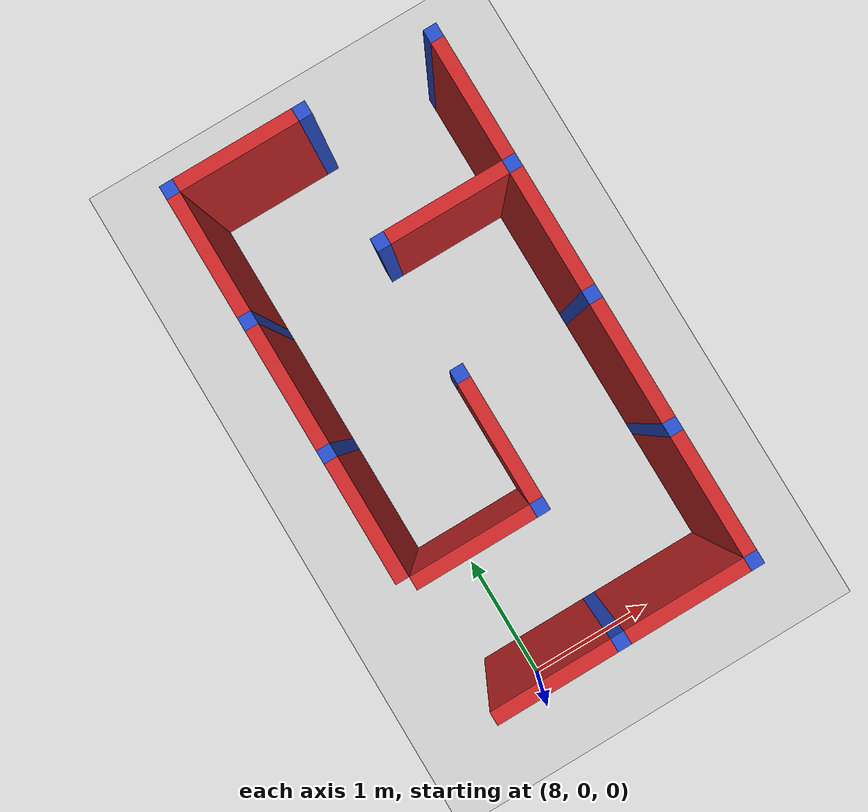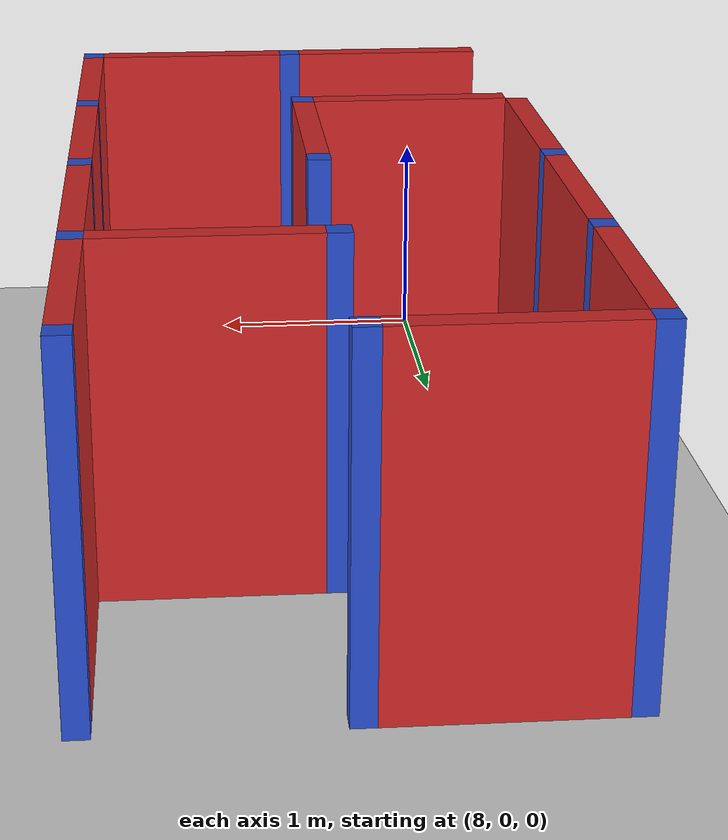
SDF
<sdf version="1.7">
 <world name="default">
  <model name="ground_plane">
   <static>1</static>
   <link name="link">
    <collision name="collision">
     <geometry><plane><normal>0 0 1</normal><size>100 100</size></plane></geometry>
     <surface><friction><ode><mu>100</mu><mu2>50</mu2></ode></friction></surface>
    </collision>
    <visual name="visual">
     <cast_shadows>0</cast_shadows>
     <geometry><plane><normal>0 0 1</normal><size>100 100</size></plane></geometry>
     <material>
      <script><uri>file://media/materials/scripts/gazebo.material</uri><name>Gazebo/Grey</name></script>
     </material>
    </visual>
   </link>
  </model>
  <model name="maze_demo">
   <link name="Joint_13_-11">
    <pose>13 -11 0 0 -0 0</pose>
    <visual name="Wall_2_Visual">
     <pose>0 0 0.75 0 -0 0</pose>
     <geometry><box><size>0.1 0.1 1.5</size></box></geometry>
     <material>
      <script><uri>file://media/materials/scripts/gazebo.material</uri><name>Gazebo/Blue</name></script>
      <ambient>0.996078 0.47451 0.0196078 1</ambient>
      <shader type="pixel"/>
     </material>
     <meta><layer>0</layer></meta>
    </visual>
    <collision name="Wall_2_Collision">
     <pose>0 0 0.75 0 -0 0</pose>
     <geometry><box><size>0.1 0.1 1.5</size></box></geometry>
     <surface>
      <friction>
       <ode><mu>1</mu><mu2>1</mu2><fdir1>0 0 0</fdir1><slip1>0</slip1><slip2>0</slip2></ode>
       <torsional>
        <coefficient>1</coefficient>
        <patch_radius>0</patch_radius>
        <surface_radius>0</surface_radius>
        <use_patch_radius>1</use_patch_radius>
        <ode><slip>0</slip></ode>
       </torsional>
      </friction>
      <bounce><restitution_coefficient>0</restitution_coefficient><threshold>1e+06</threshold></bounce>
      <contact>
       <collide_without_contact>0</collide_without_contact>
       <collide_without_contact_bitmask>1</collide_without_contact_bitmask>
       <collide_bitmask>1</collide_bitmask>
       <ode>
        <soft_cfm>0</soft_cfm>
        <soft_erp>0.2</soft_erp>
        <kp>1e+13</kp>
        <kd>1</kd>
        <max_vel>0.01</max_vel>
        <min_depth>0</min_depth>
       </ode>
       <bullet>
        <split_impulse>1</split_impulse>
        <split_impulse_penetration_threshold>-0.01</split_impulse_penetration_threshold>
        <soft_cfm>0</soft_cfm>
        <soft_erp>0.2</soft_erp>
        <kp>1e+13</kp>
        <kd>1</kd>
       </bullet>
      </contact>
     </surface>
    </collision>
   </link>
   <link name="Joint_13_-12">
    <pose>13 -12 0 0 -0 0</pose>
    <visual name="Wall_2_Visual">
     <pose>0 0 0.75 0 -0 0</pose>
     <geometry><box><size>0.1 0.1 1.5</size></box></geometry>
     <material>
      <script><uri>file://media/materials/scripts/gazebo.material</uri><name>Gazebo/Blue</name></script>
      <ambient>0.996078 0.47451 0.0196078 1</ambient>
      <shader type="pixel"/>
     </material>
     <meta><layer>0</layer></meta>
    </visual>
    <collision name="Wall_2_Collision">
     <pose>0 0 0.75 0 -0 0</pose>
     <geometry><box><size>0.1 0.1 1.5</size></box></geometry>
     <surface>
      <friction>
       <ode><mu>1</mu><mu2>1</mu2><fdir1>0 0 0</fdir1><slip1>0</slip1><slip2>0</slip2></ode>
       <torsional>
        <coefficient>1</coefficient>
        <patch_radius>0</patch_radius>
        <surface_radius>0</surface_radius>
        <use_patch_radius>1</use_patch_radius>
        <ode><slip>0</slip></ode>
       </torsional>
      </friction>
      <bounce><restitution_coefficient>0</restitution_coefficient><threshold>1e+06</threshold></bounce>
      <contact>
       <collide_without_contact>0</collide_without_contact>
       <collide_without_contact_bitmask>1</collide_without_contact_bitmask>
       <collide_bitmask>1</collide_bitmask>
       <ode>
        <soft_cfm>0</soft_cfm>
        <soft_erp>0.2</soft_erp>
        <kp>1e+13</kp>
        <kd>1</kd>
        <max_vel>0.01</max_vel>
        <min_depth>0</min_depth>
       </ode>
       <bullet>
        <split_impulse>1</split_impulse>
        <split_impulse_penetration_threshold>-0.01</split_impulse_penetration_threshold>
        <soft_cfm>0</soft_cfm>
        <soft_erp>0.2</soft_erp>
        <kp>1e+13</kp>
        <kd>1</kd>
       </bullet>
      </contact>
     </surface>
    </collision>
   </link>
   <link name="Joint_13_-13">
    <pose>13 -13 0 0 -0 0</pose>
    <visual name="Wall_2_Visual">
     <pose>0 0 0.75 0 -0 0</pose>
     <geometry><box><size>0.1 0.1 1.5</size></box></geometry>
     <material>
      <script><uri>file://media/materials/scripts/gazebo.material</uri><name>Gazebo/Blue</name></script>
      <ambient>0.996078 0.47451 0.0196078 1</ambient>
      <shader type="pixel"/>
     </material>
     <meta><layer>0</layer></meta>
    </visual>
    <collision name="Wall_2_Collision">
     <pose>0 0 0.75 0 -0 0</pose>
     <geometry><box><size>0.1 0.1 1.5</size></box></geometry>
     <surface>
      <friction>
       <ode><mu>1</mu><mu2>1</mu2><fdir1>0 0 0</fdir1><slip1>0</slip1><slip2>0</slip2></ode>
       <torsional>
        <coefficient>1</coefficient>
        <patch_radius>0</patch_radius>
        <surface_radius>0</surface_radius>
        <use_patch_radius>1</use_patch_radius>
        <ode><slip>0</slip></ode>
       </torsional>
      </friction>
      <bounce><restitution_coefficient>0</restitution_coefficient><threshold>1e+06</threshold></bounce>
      <contact>
       <collide_without_contact>0</collide_without_contact>
       <collide_without_contact_bitmask>1</collide_without_contact_bitmask>
       <collide_bitmask>1</collide_bitmask>
       <ode>
        <soft_cfm>0</soft_cfm>
        <soft_erp>0.2</soft_erp>
        <kp>1e+13</kp>
        <kd>1</kd>
        <max_vel>0.01</max_vel>
        <min_depth>0</min_depth>
       </ode>
       <bullet>
        <split_impulse>1</split_impulse>
        <split_impulse_penetration_threshold>-0.01</split_impulse_penetration_threshold>
        <soft_cfm>0</soft_cfm>
        <soft_erp>0.2</soft_erp>
        <kp>1e+13</kp>
        <kd>1</kd>
       </bullet>
      </contact>
     </surface>
    </collision>
   </link>
   <link name="Joint_14_-11">
    <pose>14 -11 0 0 -0 0</pose>
    <visual name="Wall_2_Visual">
     <pose>0 0 0.75 0 -0 0</pose>
     <geometry><box><size>0.1 0.1 1.5</size></box></geometry>
     <material>
      <script><uri>file://media/materials/scripts/gazebo.material</uri><name>Gazebo/Blue</name></script>
      <ambient>0.996078 0.47451 0.0196078 1</ambient>
      <shader type="pixel"/>
     </material>
     <meta><layer>0</layer></meta>
    </visual>
    <collision name="Wall_2_Collision">
     <pose>0 0 0.75 0 -0 0</pose>
     <geometry><box><size>0.1 0.1 1.5</size></box></geometry>
     <surface>
      <friction>
       <ode><mu>1</mu><mu2>1</mu2><fdir1>0 0 0</fdir1><slip1>0</slip1><slip2>0</slip2></ode>
       <torsional>
        <coefficient>1</coefficient>
        <patch_radius>0</patch_radius>
        <surface_radius>0</surface_radius>
        <use_patch_radius>1</use_patch_radius>
        <ode><slip>0</slip></ode>
       </torsional>
      </friction>
      <bounce><restitution_coefficient>0</restitution_coefficient><threshold>1e+06</threshold></bounce>
      <contact>
       <collide_without_contact>0</collide_without_contact>
       <collide_without_contact_bitmask>1</collide_without_contact_bitmask>
       <collide_bitmask>1</collide_bitmask>
       <ode>
        <soft_cfm>0</soft_cfm>
        <soft_erp>0.2</soft_erp>
        <kp>1e+13</kp>
        <kd>1</kd>
        <max_vel>0.01</max_vel>
        <min_depth>0</min_depth>
       </ode>
       <bullet>
        <split_impulse>1</split_impulse>
        <split_impulse_penetration_threshold>-0.01</split_impulse_penetration_threshold>
        <soft_cfm>0</soft_cfm>
        <soft_erp>0.2</soft_erp>
        <kp>1e+13</kp>
        <kd>1</kd>
       </bullet>
      </contact>
     </surface>
    </collision>
   </link>
   <link name="Joint_14_-12">
    <pose>14 -12 0 0 -0 0</pose>
    <visual name="Wall_2_Visual">
     <pose>0 0 0.75 0 -0 0</pose>
     <geometry><box><size>0.1 0.1 1.5</size></box></geometry>
     <material>
      <script><uri>file://media/materials/scripts/gazebo.material</uri><name>Gazebo/Blue</name></script>
      <ambient>0.996078 0.47451 0.0196078 1</ambient>
      <shader type="pixel"/>
     </material>
     <meta><layer>0</layer></meta>
    </visual>
    <collision name="Wall_2_Collision">
     <pose>0 0 0.75 0 -0 0</pose>
     <geometry><box><size>0.1 0.1 1.5</size></box></geometry>
     <surface>
      <friction>
       <ode><mu>1</mu><mu2>1</mu2><fdir1>0 0 0</fdir1><slip1>0</slip1><slip2>0</slip2></ode>
       <torsional>
        <coefficient>1</coefficient>
        <patch_radius>0</patch_radius>
        <surface_radius>0</surface_radius>
        <use_patch_radius>1</use_patch_radius>
        <ode><slip>0</slip></ode>
       </torsional>
      </friction>
      <bounce><restitution_coefficient>0</restitution_coefficient><threshold>1e+06</threshold></bounce>
      <contact>
       <collide_without_contact>0</collide_without_contact>
       <collide_without_contact_bitmask>1</collide_without_contact_bitmask>
       <collide_bitmask>1</collide_bitmask>
       <ode>
        <soft_cfm>0</soft_cfm>
        <soft_erp>0.2</soft_erp>
        <kp>1e+13</kp>
        <kd>1</kd>
        <max_vel>0.01</max_vel>
        <min_depth>0</min_depth>
       </ode>
       <bullet>
        <split_impulse>1</split_impulse>
        <split_impulse_penetration_threshold>-0.01</split_impulse_penetration_threshold>
        <soft_cfm>0</soft_cfm>
        <soft_erp>0.2</soft_erp>
        <kp>1e+13</kp>
        <kd>1</kd>
       </bullet>
      </contact>
     </surface>
    </collision>
   </link>
   <link name="Joint_14_-13">
    <pose>14 -13 0 0 -0 0</pose>
    <visual name="Wall_2_Visual">
     <pose>0 0 0.75 0 -0 0</pose>
     <geometry><box><size>0.1 0.1 1.5</size></box></geometry>
     <material>
      <script><uri>file://media/materials/scripts/gazebo.material</uri><name>Gazebo/Blue</name></script>
      <ambient>0.996078 0.47451 0.0196078 1</ambient>
      <shader type="pixel"/>
     </material>
     <meta><layer>0</layer></meta>
    </visual>
    <collision name="Wall_2_Collision">
     <pose>0 0 0.75 0 -0 0</pose>
     <geometry><box><size>0.1 0.1 1.5</size></box></geometry>
     <surface>
      <friction>
       <ode><mu>1</mu><mu2>1</mu2><fdir1>0 0 0</fdir1><slip1>0</slip1><slip2>0</slip2></ode>
       <torsional>
        <coefficient>1</coefficient>
        <patch_radius>0</patch_radius>
        <surface_radius>0</surface_radius>
        <use_patch_radius>1</use_patch_radius>
        <ode><slip>0</slip></ode>
       </torsional>
      </friction>
      <bounce><restitution_coefficient>0</restitution_coefficient><threshold>1e+06</threshold></bounce>
      <contact>
       <collide_without_contact>0</collide_without_contact>
       <collide_without_contact_bitmask>1</collide_without_contact_bitmask>
       <collide_bitmask>1</collide_bitmask>
       <ode>
        <soft_cfm>0</soft_cfm>
        <soft_erp>0.2</soft_erp>
        <kp>1e+13</kp>
        <kd>1</kd>
        <max_vel>0.01</max_vel>
        <min_depth>0</min_depth>
       </ode>
       <bullet>
        <split_impulse>1</split_impulse>
        <split_impulse_penetration_threshold>-0.01</split_impulse_penetration_threshold>
        <soft_cfm>0</soft_cfm>
        <soft_erp>0.2</soft_erp>
        <kp>1e+13</kp>
        <kd>1</kd>
       </bullet>
      </contact>
     </surface>
    </collision>
   </link>
   <link name="Joint_14_-14">
    <pose>14 -14 0 0 -0 0</pose>
    <visual name="Wall_2_Visual">
     <pose>0 0 0.75 0 -0 0</pose>
     <geometry><box><size>0.1 0.1 1.5</size></box></geometry>
     <material>
      <script><uri>file://media/materials/scripts/gazebo.material</uri><name>Gazebo/Blue</name></script>
      <ambient>0.996078 0.47451 0.0196078 1</ambient>
      <shader type="pixel"/>
     </material>
     <meta><layer>0</layer></meta>
    </visual>
    <collision name="Wall_2_Collision">
     <pose>0 0 0.75 0 -0 0</pose>
     <geometry><box><size>0.1 0.1 1.5</size></box></geometry>
     <surface>
      <friction>
       <ode><mu>1</mu><mu2>1</mu2><fdir1>0 0 0</fdir1><slip1>0</slip1><slip2>0</slip2></ode>
       <torsional>
        <coefficient>1</coefficient>
        <patch_radius>0</patch_radius>
        <surface_radius>0</surface_radius>
        <use_patch_radius>1</use_patch_radius>
        <ode><slip>0</slip></ode>
       </torsional>
      </friction>
      <bounce><restitution_coefficient>0</restitution_coefficient><threshold>1e+06</threshold></bounce>
      <contact>
       <collide_without_contact>0</collide_without_contact>
       <collide_without_contact_bitmask>1</collide_without_contact_bitmask>
       <collide_bitmask>1</collide_bitmask>
       <ode>
        <soft_cfm>0</soft_cfm>
        <soft_erp>0.2</soft_erp>
        <kp>1e+13</kp>
        <kd>1</kd>
        <max_vel>0.01</max_vel>
        <min_depth>0</min_depth>
       </ode>
       <bullet>
        <split_impulse>1</split_impulse>
        <split_impulse_penetration_threshold>-0.01</split_impulse_penetration_threshold>
        <soft_cfm>0</soft_cfm>
        <soft_erp>0.2</soft_erp>
        <kp>1e+13</kp>
        <kd>1</kd>
       </bullet>
      </contact>
     </surface>
    </collision>
   </link>
   <link name="Joint_14_-15">
    <pose>14 -15 0 0 -0 0</pose>
    <visual name="Wall_2_Visual">
     <pose>0 0 0.75 0 -0 0</pose>
     <geometry><box><size>0.1 0.1 1.5</size></box></geometry>
     <material>
      <script><uri>file://media/materials/scripts/gazebo.material</uri><name>Gazebo/Blue</name></script>
      <ambient>0.996078 0.47451 0.0196078 1</ambient>
      <shader type="pixel"/>
     </material>
     <meta><layer>0</layer></meta>
    </visual>
    <collision name="Wall_2_Collision">
     <pose>0 0 0.75 0 -0 0</pose>
     <geometry><box><size>0.1 0.1 1.5</size></box></geometry>
     <surface>
      <friction>
       <ode><mu>1</mu><mu2>1</mu2><fdir1>0 0 0</fdir1><slip1>0</slip1><slip2>0</slip2></ode>
       <torsional>
        <coefficient>1</coefficient>
        <patch_radius>0</patch_radius>
        <surface_radius>0</surface_radius>
        <use_patch_radius>1</use_patch_radius>
        <ode><slip>0</slip></ode>
       </torsional>
      </friction>
      <bounce><restitution_coefficient>0</restitution_coefficient><threshold>1e+06</threshold></bounce>
      <contact>
       <collide_without_contact>0</collide_without_contact>
       <collide_without_contact_bitmask>1</collide_without_contact_bitmask>
       <collide_bitmask>1</collide_bitmask>
       <ode>
        <soft_cfm>0</soft_cfm>
        <soft_erp>0.2</soft_erp>
        <kp>1e+13</kp>
        <kd>1</kd>
        <max_vel>0.01</max_vel>
        <min_depth>0</min_depth>
       </ode>
       <bullet>
        <split_impulse>1</split_impulse>
        <split_impulse_penetration_threshold>-0.01</split_impulse_penetration_threshold>
        <soft_cfm>0</soft_cfm>
        <soft_erp>0.2</soft_erp>
        <kp>1e+13</kp>
        <kd>1</kd>
       </bullet>
      </contact>
     </surface>
    </collision>
   </link>
   <link name="Joint_15_-11">
    <pose>15 -11 0 0 -0 0</pose>
    <visual name="Wall_2_Visual">
     <pose>0 0 0.75 0 -0 0</pose>
     <geometry><box><size>0.1 0.1 1.5</size></box></geometry>
     <material>
      <script><uri>file://media/materials/scripts/gazebo.material</uri><name>Gazebo/Blue</name></script>
      <ambient>0.996078 0.47451 0.0196078 1</ambient>
      <shader type="pixel"/>
     </material>
     <meta><layer>0</layer></meta>
    </visual>
    <collision name="Wall_2_Collision">
     <pose>0 0 0.75 0 -0 0</pose>
     <geometry><box><size>0.1 0.1 1.5</size></box></geometry>
     <surface>
      <friction>
       <ode><mu>1</mu><mu2>1</mu2><fdir1>0 0 0</fdir1><slip1>0</slip1><slip2>0</slip2></ode>
       <torsional>
        <coefficient>1</coefficient>
        <patch_radius>0</patch_radius>
        <surface_radius>0</surface_radius>
        <use_patch_radius>1</use_patch_radius>
        <ode><slip>0</slip></ode>
       </torsional>
      </friction>
      <bounce><restitution_coefficient>0</restitution_coefficient><threshold>1e+06</threshold></bounce>
      <contact>
       <collide_without_contact>0</collide_without_contact>
       <collide_without_contact_bitmask>1</collide_without_contact_bitmask>
       <collide_bitmask>1</collide_bitmask>
       <ode>
        <soft_cfm>0</soft_cfm>
        <soft_erp>0.2</soft_erp>
        <kp>1e+13</kp>
        <kd>1</kd>
        <max_vel>0.01</max_vel>
        <min_depth>0</min_depth>
       </ode>
       <bullet>
        <split_impulse>1</split_impulse>
        <split_impulse_penetration_threshold>-0.01</split_impulse_penetration_threshold>
        <soft_cfm>0</soft_cfm>
        <soft_erp>0.2</soft_erp>
        <kp>1e+13</kp>
        <kd>1</kd>
       </bullet>
      </contact>
     </surface>
    </collision>
   </link>
   <link name="Joint_15_-12">
    <pose>15 -12 0 0 -0 0</pose>
    <visual name="Wall_2_Visual">
     <pose>0 0 0.75 0 -0 0</pose>
     <geometry><box><size>0.1 0.1 1.5</size></box></geometry>
     <material>
      <script><uri>file://media/materials/scripts/gazebo.material</uri><name>Gazebo/Blue</name></script>
      <ambient>0.996078 0.47451 0.0196078 1</ambient>
      <shader type="pixel"/>
     </material>
     <meta><layer>0</layer></meta>
    </visual>
    <collision name="Wall_2_Collision">
     <pose>0 0 0.75 0 -0 0</pose>
     <geometry><box><size>0.1 0.1 1.5</size></box></geometry>
     <surface>
      <friction>
       <ode><mu>1</mu><mu2>1</mu2><fdir1>0 0 0</fdir1><slip1>0</slip1><slip2>0</slip2></ode>
       <torsional>
        <coefficient>1</coefficient>
        <patch_radius>0</patch_radius>
        <surface_radius>0</surface_radius>
        <use_patch_radius>1</use_patch_radius>
        <ode><slip>0</slip></ode>
       </torsional>
      </friction>
      <bounce><restitution_coefficient>0</restitution_coefficient><threshold>1e+06</threshold></bounce>
      <contact>
       <collide_without_contact>0</collide_without_contact>
       <collide_without_contact_bitmask>1</collide_without_contact_bitmask>
       <collide_bitmask>1</collide_bitmask>
       <ode>
        <soft_cfm>0</soft_cfm>
        <soft_erp>0.2</soft_erp>
        <kp>1e+13</kp>
        <kd>1</kd>
        <max_vel>0.01</max_vel>
        <min_depth>0</min_depth>
       </ode>
       <bullet>
        <split_impulse>1</split_impulse>
        <split_impulse_penetration_threshold>-0.01</split_impulse_penetration_threshold>
        <soft_cfm>0</soft_cfm>
        <soft_erp>0.2</soft_erp>
        <kp>1e+13</kp>
        <kd>1</kd>
       </bullet>
      </contact>
     </surface>
    </collision>
   </link>
   <link name="Joint_15_-13">
    <pose>15 -13 0 0 -0 0</pose>
    <visual name="Wall_2_Visual">
     <pose>0 0 0.75 0 -0 0</pose>
     <geometry><box><size>0.1 0.1 1.5</size></box></geometry>
     <material>
      <script><uri>file://media/materials/scripts/gazebo.material</uri><name>Gazebo/Blue</name></script>
      <ambient>0.996078 0.47451 0.0196078 1</ambient>
      <shader type="pixel"/>
     </material>
     <meta><layer>0</layer></meta>
    </visual>
    <collision name="Wall_2_Collision">
     <pose>0 0 0.75 0 -0 0</pose>
     <geometry><box><size>0.1 0.1 1.5</size></box></geometry>
     <surface>
      <friction>
       <ode><mu>1</mu><mu2>1</mu2><fdir1>0 0 0</fdir1><slip1>0</slip1><slip2>0</slip2></ode>
       <torsional>
        <coefficient>1</coefficient>
        <patch_radius>0</patch_radius>
        <surface_radius>0</surface_radius>
        <use_patch_radius>1</use_patch_radius>
        <ode><slip>0</slip></ode>
       </torsional>
      </friction>
      <bounce><restitution_coefficient>0</restitution_coefficient><threshold>1e+06</threshold></bounce>
      <contact>
       <collide_without_contact>0</collide_without_contact>
       <collide_without_contact_bitmask>1</collide_without_contact_bitmask>
       <collide_bitmask>1</collide_bitmask>
       <ode>
        <soft_cfm>0</soft_cfm>
        <soft_erp>0.2</soft_erp>
        <kp>1e+13</kp>
        <kd>1</kd>
        <max_vel>0.01</max_vel>
        <min_depth>0</min_depth>
       </ode>
       <bullet>
        <split_impulse>1</split_impulse>
        <split_impulse_penetration_threshold>-0.01</split_impulse_penetration_threshold>
        <soft_cfm>0</soft_cfm>
        <soft_erp>0.2</soft_erp>
        <kp>1e+13</kp>
        <kd>1</kd>
       </bullet>
      </contact>
     </surface>
    </collision>
   </link>
   <link name="Joint_15_-14">
    <pose>15 -14 0 0 -0 0</pose>
    <visual name="Wall_2_Visual">
     <pose>0 0 0.75 0 -0 0</pose>
     <geometry><box><size>0.1 0.1 1.5</size></box></geometry>
     <material>
      <script><uri>file://media/materials/scripts/gazebo.material</uri><name>Gazebo/Blue</name></script>
      <ambient>0.996078 0.47451 0.0196078 1</ambient>
      <shader type="pixel"/>
     </material>
     <meta><layer>0</layer></meta>
    </visual>
    <collision name="Wall_2_Collision">
     <pose>0 0 0.75 0 -0 0</pose>
     <geometry><box><size>0.1 0.1 1.5</size></box></geometry>
     <surface>
      <friction>
       <ode><mu>1</mu><mu2>1</mu2><fdir1>0 0 0</fdir1><slip1>0</slip1><slip2>0</slip2></ode>
       <torsional>
        <coefficient>1</coefficient>
        <patch_radius>0</patch_radius>
        <surface_radius>0</surface_radius>
        <use_patch_radius>1</use_patch_radius>
        <ode><slip>0</slip></ode>
       </torsional>
      </friction>
      <bounce><restitution_coefficient>0</restitution_coefficient><threshold>1e+06</threshold></bounce>
      <contact>
       <collide_without_contact>0</collide_without_contact>
       <collide_without_contact_bitmask>1</collide_without_contact_bitmask>
       <collide_bitmask>1</collide_bitmask>
       <ode>
        <soft_cfm>0</soft_cfm>
        <soft_erp>0.2</soft_erp>
        <kp>1e+13</kp>
        <kd>1</kd>
        <max_vel>0.01</max_vel>
        <min_depth>0</min_depth>
       </ode>
       <bullet>
        <split_impulse>1</split_impulse>
        <split_impulse_penetration_threshold>-0.01</split_impulse_penetration_threshold>
        <soft_cfm>0</soft_cfm>
        <soft_erp>0.2</soft_erp>
        <kp>1e+13</kp>
        <kd>1</kd>
       </bullet>
      </contact>
     </surface>
    </collision>
   </link>
   <link name="Joint_15_-15">
    <pose>15 -15 0 0 -0 0</pose>
    <visual name="Wall_2_Visual">
     <pose>0 0 0.75 0 -0 0</pose>
     <geometry><box><size>0.1 0.1 1.5</size></box></geometry>
     <material>
      <script><uri>file://media/materials/scripts/gazebo.material</uri><name>Gazebo/Blue</name></script>
      <ambient>0.996078 0.47451 0.0196078 1</ambient>
      <shader type="pixel"/>
     </material>
     <meta><layer>0</layer></meta>
    </visual>
    <collision name="Wall_2_Collision">
     <pose>0 0 0.75 0 -0 0</pose>
     <geometry><box><size>0.1 0.1 1.5</size></box></geometry>
     <surface>
      <friction>
       <ode><mu>1</mu><mu2>1</mu2><fdir1>0 0 0</fdir1><slip1>0</slip1><slip2>0</slip2></ode>
       <torsional>
        <coefficient>1</coefficient>
        <patch_radius>0</patch_radius>
        <surface_radius>0</surface_radius>
        <use_patch_radius>1</use_patch_radius>
        <ode><slip>0</slip></ode>
       </torsional>
      </friction>
      <bounce><restitution_coefficient>0</restitution_coefficient><threshold>1e+06</threshold></bounce>
      <contact>
       <collide_without_contact>0</collide_without_contact>
       <collide_without_contact_bitmask>1</collide_without_contact_bitmask>
       <collide_bitmask>1</collide_bitmask>
       <ode>
        <soft_cfm>0</soft_cfm>
        <soft_erp>0.2</soft_erp>
        <kp>1e+13</kp>
        <kd>1</kd>
        <max_vel>0.01</max_vel>
        <min_depth>0</min_depth>
       </ode>
       <bullet>
        <split_impulse>1</split_impulse>
        <split_impulse_penetration_threshold>-0.01</split_impulse_penetration_threshold>
        <soft_cfm>0</soft_cfm>
        <soft_erp>0.2</soft_erp>
        <kp>1e+13</kp>
        <kd>1</kd>
       </bullet>
      </contact>
     </surface>
    </collision>
   </link>
   <link name="Wall_13_11_h">
    <pose>13.5 -11 0 0 -0 0</pose>
    <visual name="Wall_0_Visual">
     <pose>0 0 0.75 0 -0 0</pose>
     <geometry><box><size>0.9 0.1 1.5</size></box></geometry>
     <material>
      <script><uri>file://media/materials/scripts/gazebo.material</uri><name>Gazebo/Red</name></script>
      <ambient>0.921569 0.807843 0.615686 1</ambient>
      <shader type="pixel"/>
     </material>
     <meta><layer>0</layer></meta>
    </visual>
    <collision name="Wall_0_Collision">
     <pose>0 0 0.75 0 -0 0</pose>
     <geometry><box><size>0.9 0.1 1.5</size></box></geometry>
     <surface>
      <friction>
       <ode><mu>1</mu><mu2>1</mu2><fdir1>0 0 0</fdir1><slip1>0</slip1><slip2>0</slip2></ode>
       <torsional>
        <coefficient>1</coefficient>
        <patch_radius>0</patch_radius>
        <surface_radius>0</surface_radius>
        <use_patch_radius>1</use_patch_radius>
        <ode><slip>0</slip></ode>
       </torsional>
      </friction>
      <bounce><restitution_coefficient>0</restitution_coefficient><threshold>1e+06</threshold></bounce>
      <contact>
       <collide_without_contact>0</collide_without_contact>
       <collide_without_contact_bitmask>1</collide_without_contact_bitmask>
       <collide_bitmask>1</collide_bitmask>
       <ode>
        <soft_cfm>0</soft_cfm>
        <soft_erp>0.2</soft_erp>
        <kp>1e+13</kp>
        <kd>1</kd>
        <max_vel>0.01</max_vel>
        <min_depth>0</min_depth>
       </ode>
       <bullet>
        <split_impulse>1</split_impulse>
        <split_impulse_penetration_threshold>-0.01</split_impulse_penetration_threshold>
        <soft_cfm>0</soft_cfm>
        <soft_erp>0.2</soft_erp>
        <kp>1e+13</kp>
        <kd>1</kd>
       </bullet>
      </contact>
     </surface>
    </collision>
   </link>
   <link name="Wall_13_11_v">
    <pose>13 -11.5 0 0 -0 1.5708</pose>
    <visual name="Wall_0_Visual">
     <pose>0 0 0.75 0 -0 0</pose>
     <geometry><box><size>0.9 0.1 1.5</size></box></geometry>
     <material>
      <script><uri>file://media/materials/scripts/gazebo.material</uri><name>Gazebo/Red</name></script>
      <ambient>0.921569 0.807843 0.615686 1</ambient>
      <shader type="pixel"/>
     </material>
     <meta><layer>0</layer></meta>
    </visual>
    <collision name="Wall_0_Collision">
     <pose>0 0 0.75 0 -0 0</pose>
     <geometry><box><size>0.9 0.1 1.5</size></box></geometry>
     <surface>
      <friction>
       <ode><mu>1</mu><mu2>1</mu2><fdir1>0 0 0</fdir1><slip1>0</slip1><slip2>0</slip2></ode>
       <torsional>
        <coefficient>1</coefficient>
        <patch_radius>0</patch_radius>
        <surface_radius>0</surface_radius>
        <use_patch_radius>1</use_patch_radius>
        <ode><slip>0</slip></ode>
       </torsional>
      </friction>
      <bounce><restitution_coefficient>0</restitution_coefficient><threshold>1e+06</threshold></bounce>
      <contact>
       <collide_without_contact>0</collide_without_contact>
       <collide_without_contact_bitmask>1</collide_without_contact_bitmask>
       <collide_bitmask>1</collide_bitmask>
       <ode>
        <soft_cfm>0</soft_cfm>
        <soft_erp>0.2</soft_erp>
        <kp>1e+13</kp>
        <kd>1</kd>
        <max_vel>0.01</max_vel>
        <min_depth>0</min_depth>
       </ode>
       <bullet>
        <split_impulse>1</split_impulse>
        <split_impulse_penetration_threshold>-0.01</split_impulse_penetration_threshold>
        <soft_cfm>0</soft_cfm>
        <soft_erp>0.2</soft_erp>
        <kp>1e+13</kp>
        <kd>1</kd>
       </bullet>
      </contact>
     </surface>
    </collision>
   </link>
   <link name="Wall_13_12_v">
    <pose>13 -12.5 0 0 -0 1.5708</pose>
    <visual name="Wall_0_Visual">
     <pose>0 0 0.75 0 -0 0</pose>
     <geometry><box><size>0.9 0.1 1.5</size></box></geometry>
     <material>
      <script><uri>file://media/materials/scripts/gazebo.material</uri><name>Gazebo/Red</name></script>
      <ambient>0.921569 0.807843 0.615686 1</ambient>
      <shader type="pixel"/>
     </material>
     <meta><layer>0</layer></meta>
    </visual>
    <collision name="Wall_0_Collision">
     <pose>0 0 0.75 0 -0 0</pose>
     <geometry><box><size>0.9 0.1 1.5</size></box></geometry>
     <surface>
      <friction>
       <ode><mu>1</mu><mu2>1</mu2><fdir1>0 0 0</fdir1><slip1>0</slip1><slip2>0</slip2></ode>
       <torsional>
        <coefficient>1</coefficient>
        <patch_radius>0</patch_radius>
        <surface_radius>0</surface_radius>
        <use_patch_radius>1</use_patch_radius>
        <ode><slip>0</slip></ode>
       </torsional>
      </friction>
      <bounce><restitution_coefficient>0</restitution_coefficient><threshold>1e+06</threshold></bounce>
      <contact>
       <collide_without_contact>0</collide_without_contact>
       <collide_without_contact_bitmask>1</collide_without_contact_bitmask>
       <collide_bitmask>1</collide_bitmask>
       <ode>
        <soft_cfm>0</soft_cfm>
        <soft_erp>0.2</soft_erp>
        <kp>1e+13</kp>
        <kd>1</kd>
        <max_vel>0.01</max_vel>
        <min_depth>0</min_depth>
       </ode>
       <bullet>
        <split_impulse>1</split_impulse>
        <split_impulse_penetration_threshold>-0.01</split_impulse_penetration_threshold>
        <soft_cfm>0</soft_cfm>
        <soft_erp>0.2</soft_erp>
        <kp>1e+13</kp>
        <kd>1</kd>
       </bullet>
      </contact>
     </surface>
    </collision>
   </link>
   <link name="Wall_13_13_v">
    <pose>13 -13.5 0 0 -0 1.5708</pose>
    <visual name="Wall_0_Visual">
     <pose>0 0 0.75 0 -0 0</pose>
     <geometry><box><size>0.9 0.1 1.5</size></box></geometry>
     <material>
      <script><uri>file://media/materials/scripts/gazebo.material</uri><name>Gazebo/Red</name></script>
      <ambient>0.921569 0.807843 0.615686 1</ambient>
      <shader type="pixel"/>
     </material>
     <meta><layer>0</layer></meta>
    </visual>
    <collision name="Wall_0_Collision">
     <pose>0 0 0.75 0 -0 0</pose>
     <geometry><box><size>0.9 0.1 1.5</size></box></geometry>
     <surface>
      <friction>
       <ode><mu>1</mu><mu2>1</mu2><fdir1>0 0 0</fdir1><slip1>0</slip1><slip2>0</slip2></ode>
       <torsional>
        <coefficient>1</coefficient>
        <patch_radius>0</patch_radius>
        <surface_radius>0</surface_radius>
        <use_patch_radius>1</use_patch_radius>
        <ode><slip>0</slip></ode>
       </torsional>
      </friction>
      <bounce><restitution_coefficient>0</restitution_coefficient><threshold>1e+06</threshold></bounce>
      <contact>
       <collide_without_contact>0</collide_without_contact>
       <collide_without_contact_bitmask>1</collide_without_contact_bitmask>
       <collide_bitmask>1</collide_bitmask>
       <ode>
        <soft_cfm>0</soft_cfm>
        <soft_erp>0.2</soft_erp>
        <kp>1e+13</kp>
        <kd>1</kd>
        <max_vel>0.01</max_vel>
        <min_depth>0</min_depth>
       </ode>
       <bullet>
        <split_impulse>1</split_impulse>
        <split_impulse_penetration_threshold>-0.01</split_impulse_penetration_threshold>
        <soft_cfm>0</soft_cfm>
        <soft_erp>0.2</soft_erp>
        <kp>1e+13</kp>
        <kd>1</kd>
       </bullet>
      </contact>
     </surface>
    </collision>
   </link>
   <link name="Wall_13_14_h">
    <pose>13.5 -14 0 0 -0 0</pose>
    <visual name="Wall_0_Visual">
     <pose>0 0 0.75 0 -0 0</pose>
     <geometry><box><size>0.9 0.1 1.5</size></box></geometry>
     <material>
      <script><uri>file://media/materials/scripts/gazebo.material</uri><name>Gazebo/Red</name></script>
      <ambient>0.921569 0.807843 0.615686 1</ambient>
      <shader type="pixel"/>
     </material>
     <meta><layer>0</layer></meta>
    </visual>
    <collision name="Wall_0_Collision">
     <pose>0 0 0.75 0 -0 0</pose>
     <geometry><box><size>0.9 0.1 1.5</size></box></geometry>
     <surface>
      <friction>
       <ode><mu>1</mu><mu2>1</mu2><fdir1>0 0 0</fdir1><slip1>0</slip1><slip2>0</slip2></ode>
       <torsional>
        <coefficient>1</coefficient>
        <patch_radius>0</patch_radius>
        <surface_radius>0</surface_radius>
        <use_patch_radius>1</use_patch_radius>
        <ode><slip>0</slip></ode>
       </torsional>
      </friction>
      <bounce><restitution_coefficient>0</restitution_coefficient><threshold>1e+06</threshold></bounce>
      <contact>
       <collide_without_contact>0</collide_without_contact>
       <collide_without_contact_bitmask>1</collide_without_contact_bitmask>
       <collide_bitmask>1</collide_bitmask>
       <ode>
        <soft_cfm>0</soft_cfm>
        <soft_erp>0.2</soft_erp>
        <kp>1e+13</kp>
        <kd>1</kd>
        <max_vel>0.01</max_vel>
        <min_depth>0</min_depth>
       </ode>
       <bullet>
        <split_impulse>1</split_impulse>
        <split_impulse_penetration_threshold>-0.01</split_impulse_penetration_threshold>
        <soft_cfm>0</soft_cfm>
        <soft_erp>0.2</soft_erp>
        <kp>1e+13</kp>
        <kd>1</kd>
       </bullet>
      </contact>
     </surface>
    </collision>
   </link>
   <link name="Wall_13_15_h">
    <pose>13.5 -15 0 0 -0 0</pose>
    <visual name="Wall_0_Visual">
     <pose>0 0 0.75 0 -0 0</pose>
     <geometry><box><size>0.9 0.1 1.5</size></box></geometry>
     <material>
      <script><uri>file://media/materials/scripts/gazebo.material</uri><name>Gazebo/Red</name></script>
      <ambient>0.921569 0.807843 0.615686 1</ambient>
      <shader type="pixel"/>
     </material>
     <meta><layer>0</layer></meta>
    </visual>
    <collision name="Wall_0_Collision">
     <pose>0 0 0.75 0 -0 0</pose>
     <geometry><box><size>0.9 0.1 1.5</size></box></geometry>
     <surface>
      <friction>
       <ode><mu>1</mu><mu2>1</mu2><fdir1>0 0 0</fdir1><slip1>0</slip1><slip2>0</slip2></ode>
       <torsional>
        <coefficient>1</coefficient>
        <patch_radius>0</patch_radius>
        <surface_radius>0</surface_radius>
        <use_patch_radius>1</use_patch_radius>
        <ode><slip>0</slip></ode>
       </torsional>
      </friction>
      <bounce><restitution_coefficient>0</restitution_coefficient><threshold>1e+06</threshold></bounce>
      <contact>
       <collide_without_contact>0</collide_without_contact>
       <collide_without_contact_bitmask>1</collide_without_contact_bitmask>
       <collide_bitmask>1</collide_bitmask>
       <ode>
        <soft_cfm>0</soft_cfm>
        <soft_erp>0.2</soft_erp>
        <kp>1e+13</kp>
        <kd>1</kd>
        <max_vel>0.01</max_vel>
        <min_depth>0</min_depth>
       </ode>
       <bullet>
        <split_impulse>1</split_impulse>
        <split_impulse_penetration_threshold>-0.01</split_impulse_penetration_threshold>
        <soft_cfm>0</soft_cfm>
        <soft_erp>0.2</soft_erp>
        <kp>1e+13</kp>
        <kd>1</kd>
       </bullet>
      </contact>
     </surface>
    </collision>
   </link>
   <link name="Wall_14_12_h">
    <pose>14.5 -12 0 0 -0 0</pose>
    <visual name="Wall_0_Visual">
     <pose>0 0 0.75 0 -0 0</pose>
     <geometry><box><size>0.9 0.1 1.5</size></box></geometry>
     <material>
      <script><uri>file://media/materials/scripts/gazebo.material</uri><name>Gazebo/Red</name></script>
      <ambient>0.921569 0.807843 0.615686 1</ambient>
      <shader type="pixel"/>
     </material>
     <meta><layer>0</layer></meta>
    </visual>
    <collision name="Wall_0_Collision">
     <pose>0 0 0.75 0 -0 0</pose>
     <geometry><box><size>0.9 0.1 1.5</size></box></geometry>
     <surface>
      <friction>
       <ode><mu>1</mu><mu2>1</mu2><fdir1>0 0 0</fdir1><slip1>0</slip1><slip2>0</slip2></ode>
       <torsional>
        <coefficient>1</coefficient>
        <patch_radius>0</patch_radius>
        <surface_radius>0</surface_radius>
        <use_patch_radius>1</use_patch_radius>
        <ode><slip>0</slip></ode>
       </torsional>
      </friction>
      <bounce><restitution_coefficient>0</restitution_coefficient><threshold>1e+06</threshold></bounce>
      <contact>
       <collide_without_contact>0</collide_without_contact>
       <collide_without_contact_bitmask>1</collide_without_contact_bitmask>
       <collide_bitmask>1</collide_bitmask>
       <ode>
        <soft_cfm>0</soft_cfm>
        <soft_erp>0.2</soft_erp>
        <kp>1e+13</kp>
        <kd>1</kd>
        <max_vel>0.01</max_vel>
        <min_depth>0</min_depth>
       </ode>
       <bullet>
        <split_impulse>1</split_impulse>
        <split_impulse_penetration_threshold>-0.01</split_impulse_penetration_threshold>
        <soft_cfm>0</soft_cfm>
        <soft_erp>0.2</soft_erp>
        <kp>1e+13</kp>
        <kd>1</kd>
       </bullet>
      </contact>
     </surface>
    </collision>
   </link>
   <link name="Wall_14_13_v">
    <pose>14 -13.5 0 0 -0 1.5708</pose>
    <visual name="Wall_0_Visual">
     <pose>0 0 0.75 0 -0 0</pose>
     <geometry><box><size>0.9 0.1 1.5</size></box></geometry>
     <material>
      <script><uri>file://media/materials/scripts/gazebo.material</uri><name>Gazebo/Red</name></script>
      <ambient>0.921569 0.807843 0.615686 1</ambient>
      <shader type="pixel"/>
     </material>
     <meta><layer>0</layer></meta>
    </visual>
    <collision name="Wall_0_Collision">
     <pose>0 0 0.75 0 -0 0</pose>
     <geometry><box><size>0.9 0.1 1.5</size></box></geometry>
     <surface>
      <friction>
       <ode><mu>1</mu><mu2>1</mu2><fdir1>0 0 0</fdir1><slip1>0</slip1><slip2>0</slip2></ode>
       <torsional>
        <coefficient>1</coefficient>
        <patch_radius>0</patch_radius>
        <surface_radius>0</surface_radius>
        <use_patch_radius>1</use_patch_radius>
        <ode><slip>0</slip></ode>
       </torsional>
      </friction>
      <bounce><restitution_coefficient>0</restitution_coefficient><threshold>1e+06</threshold></bounce>
      <contact>
       <collide_without_contact>0</collide_without_contact>
       <collide_without_contact_bitmask>1</collide_without_contact_bitmask>
       <collide_bitmask>1</collide_bitmask>
       <ode>
        <soft_cfm>0</soft_cfm>
        <soft_erp>0.2</soft_erp>
        <kp>1e+13</kp>
        <kd>1</kd>
        <max_vel>0.01</max_vel>
        <min_depth>0</min_depth>
       </ode>
       <bullet>
        <split_impulse>1</split_impulse>
        <split_impulse_penetration_threshold>-0.01</split_impulse_penetration_threshold>
        <soft_cfm>0</soft_cfm>
        <soft_erp>0.2</soft_erp>
        <kp>1e+13</kp>
        <kd>1</kd>
       </bullet>
      </contact>
     </surface>
    </collision>
   </link>
   <link name="Wall_14_15_h">
    <pose>14.5 -15 0 0 -0 0</pose>
    <visual name="Wall_0_Visual">
     <pose>0 0 0.75 0 -0 0</pose>
     <geometry><box><size>0.9 0.1 1.5</size></box></geometry>
     <material>
      <script><uri>file://media/materials/scripts/gazebo.material</uri><name>Gazebo/Red</name></script>
      <ambient>0.921569 0.807843 0.615686 1</ambient>
      <shader type="pixel"/>
     </material>
     <meta><layer>0</layer></meta>
    </visual>
    <collision name="Wall_0_Collision">
     <pose>0 0 0.75 0 -0 0</pose>
     <geometry><box><size>0.9 0.1 1.5</size></box></geometry>
     <surface>
      <friction>
       <ode><mu>1</mu><mu2>1</mu2><fdir1>0 0 0</fdir1><slip1>0</slip1><slip2>0</slip2></ode>
       <torsional>
        <coefficient>1</coefficient>
        <patch_radius>0</patch_radius>
        <surface_radius>0</surface_radius>
        <use_patch_radius>1</use_patch_radius>
        <ode><slip>0</slip></ode>
       </torsional>
      </friction>
      <bounce><restitution_coefficient>0</restitution_coefficient><threshold>1e+06</threshold></bounce>
      <contact>
       <collide_without_contact>0</collide_without_contact>
       <collide_without_contact_bitmask>1</collide_without_contact_bitmask>
       <collide_bitmask>1</collide_bitmask>
       <ode>
        <soft_cfm>0</soft_cfm>
        <soft_erp>0.2</soft_erp>
        <kp>1e+13</kp>
        <kd>1</kd>
        <max_vel>0.01</max_vel>
        <min_depth>0</min_depth>
       </ode>
       <bullet>
        <split_impulse>1</split_impulse>
        <split_impulse_penetration_threshold>-0.01</split_impulse_penetration_threshold>
        <soft_cfm>0</soft_cfm>
        <soft_erp>0.2</soft_erp>
        <kp>1e+13</kp>
        <kd>1</kd>
       </bullet>
      </contact>
     </surface>
    </collision>
   </link>
   <link name="Wall_15_11_v">
    <pose>15 -11.5 0 0 -0 1.5708</pose>
    <visual name="Wall_0_Visual">
     <pose>0 0 0.75 0 -0 0</pose>
     <geometry><box><size>0.9 0.1 1.5</size></box></geometry>
     <material>
      <script><uri>file://media/materials/scripts/gazebo.material</uri><name>Gazebo/Red</name></script>
      <ambient>0.921569 0.807843 0.615686 1</ambient>
      <shader type="pixel"/>
     </material>
     <meta><layer>0</layer></meta>
    </visual>
    <collision name="Wall_0_Collision">
     <pose>0 0 0.75 0 -0 0</pose>
     <geometry><box><size>0.9 0.1 1.5</size></box></geometry>
     <surface>
      <friction>
       <ode><mu>1</mu><mu2>1</mu2><fdir1>0 0 0</fdir1><slip1>0</slip1><slip2>0</slip2></ode>
       <torsional>
        <coefficient>1</coefficient>
        <patch_radius>0</patch_radius>
        <surface_radius>0</surface_radius>
        <use_patch_radius>1</use_patch_radius>
        <ode><slip>0</slip></ode>
       </torsional>
      </friction>
      <bounce><restitution_coefficient>0</restitution_coefficient><threshold>1e+06</threshold></bounce>
      <contact>
       <collide_without_contact>0</collide_without_contact>
       <collide_without_contact_bitmask>1</collide_without_contact_bitmask>
       <collide_bitmask>1</collide_bitmask>
       <ode>
        <soft_cfm>0</soft_cfm>
        <soft_erp>0.2</soft_erp>
        <kp>1e+13</kp>
        <kd>1</kd>
        <max_vel>0.01</max_vel>
        <min_depth>0</min_depth>
       </ode>
       <bullet>
        <split_impulse>1</split_impulse>
        <split_impulse_penetration_threshold>-0.01</split_impulse_penetration_threshold>
        <soft_cfm>0</soft_cfm>
        <soft_erp>0.2</soft_erp>
        <kp>1e+13</kp>
        <kd>1</kd>
       </bullet>
      </contact>
     </surface>
    </collision>
   </link>
   <link name="Wall_15_12_v">
    <pose>15 -12.5 0 0 -0 1.5708</pose>
    <visual name="Wall_0_Visual">
     <pose>0 0 0.75 0 -0 0</pose>
     <geometry><box><size>0.9 0.1 1.5</size></box></geometry>
     <material>
      <script><uri>file://media/materials/scripts/gazebo.material</uri><name>Gazebo/Red</name></script>
      <ambient>0.921569 0.807843 0.615686 1</ambient>
      <shader type="pixel"/>
     </material>
     <meta><layer>0</layer></meta>
    </visual>
    <collision name="Wall_0_Collision">
     <pose>0 0 0.75 0 -0 0</pose>
     <geometry><box><size>0.9 0.1 1.5</size></box></geometry>
     <surface>
      <friction>
       <ode><mu>1</mu><mu2>1</mu2><fdir1>0 0 0</fdir1><slip1>0</slip1><slip2>0</slip2></ode>
       <torsional>
        <coefficient>1</coefficient>
        <patch_radius>0</patch_radius>
        <surface_radius>0</surface_radius>
        <use_patch_radius>1</use_patch_radius>
        <ode><slip>0</slip></ode>
       </torsional>
      </friction>
      <bounce><restitution_coefficient>0</restitution_coefficient><threshold>1e+06</threshold></bounce>
      <contact>
       <collide_without_contact>0</collide_without_contact>
       <collide_without_contact_bitmask>1</collide_without_contact_bitmask>
       <collide_bitmask>1</collide_bitmask>
       <ode>
        <soft_cfm>0</soft_cfm>
        <soft_erp>0.2</soft_erp>
        <kp>1e+13</kp>
        <kd>1</kd>
        <max_vel>0.01</max_vel>
        <min_depth>0</min_depth>
       </ode>
       <bullet>
        <split_impulse>1</split_impulse>
        <split_impulse_penetration_threshold>-0.01</split_impulse_penetration_threshold>
        <soft_cfm>0</soft_cfm>
        <soft_erp>0.2</soft_erp>
        <kp>1e+13</kp>
        <kd>1</kd>
       </bullet>
      </contact>
     </surface>
    </collision>
   </link>
   <link name="Wall_15_13_v">
    <pose>15 -13.5 0 0 -0 1.5708</pose>
    <visual name="Wall_0_Visual">
     <pose>0 0 0.75 0 -0 0</pose>
     <geometry><box><size>0.9 0.1 1.5</size></box></geometry>
     <material>
      <script><uri>file://media/materials/scripts/gazebo.material</uri><name>Gazebo/Red</name></script>
      <ambient>0.921569 0.807843 0.615686 1</ambient>
      <shader type="pixel"/>
     </material>
     <meta><layer>0</layer></meta>
    </visual>
    <collision name="Wall_0_Collision">
     <pose>0 0 0.75 0 -0 0</pose>
     <geometry><box><size>0.9 0.1 1.5</size></box></geometry>
     <surface>
      <friction>
       <ode><mu>1</mu><mu2>1</mu2><fdir1>0 0 0</fdir1><slip1>0</slip1><slip2>0</slip2></ode>
       <torsional>
        <coefficient>1</coefficient>
        <patch_radius>0</patch_radius>
        <surface_radius>0</surface_radius>
        <use_patch_radius>1</use_patch_radius>
        <ode><slip>0</slip></ode>
       </torsional>
      </friction>
      <bounce><restitution_coefficient>0</restitution_coefficient><threshold>1e+06</threshold></bounce>
      <contact>
       <collide_without_contact>0</collide_without_contact>
       <collide_without_contact_bitmask>1</collide_without_contact_bitmask>
       <collide_bitmask>1</collide_bitmask>
       <ode>
        <soft_cfm>0</soft_cfm>
        <soft_erp>0.2</soft_erp>
        <kp>1e+13</kp>
        <kd>1</kd>
        <max_vel>0.01</max_vel>
        <min_depth>0</min_depth>
       </ode>
       <bullet>
        <split_impulse>1</split_impulse>
        <split_impulse_penetration_threshold>-0.01</split_impulse_penetration_threshold>
        <soft_cfm>0</soft_cfm>
        <soft_erp>0.2</soft_erp>
        <kp>1e+13</kp>
        <kd>1</kd>
       </bullet>
      </contact>
     </surface>
    </collision>
   </link>
   <link name="Wall_15_14_v">
    <pose>15 -14.5 0 0 -0 1.5708</pose>
    <visual name="Wall_0_Visual">
     <pose>0 0 0.75 0 -0 0</pose>
     <geometry><box><size>0.9 0.1 1.5</size></box></geometry>
     <material>
      <script><uri>file://media/materials/scripts/gazebo.material</uri><name>Gazebo/Red</name></script>
      <ambient>0.921569 0.807843 0.615686 1</ambient>
      <shader type="pixel"/>
     </material>
     <meta><layer>0</layer></meta>
    </visual>
    <collision name="Wall_0_Collision">
     <pose>0 0 0.75 0 -0 0</pose>
     <geometry><box><size>0.9 0.1 1.5</size></box></geometry>
     <surface>
      <friction>
       <ode><mu>1</mu><mu2>1</mu2><fdir1>0 0 0</fdir1><slip1>0</slip1><slip2>0</slip2></ode>
       <torsional>
        <coefficient>1</coefficient>
        <patch_radius>0</patch_radius>
        <surface_radius>0</surface_radius>
        <use_patch_radius>1</use_patch_radius>
        <ode><slip>0</slip></ode>
       </torsional>
      </friction>
      <bounce><restitution_coefficient>0</restitution_coefficient><threshold>1e+06</threshold></bounce>
      <contact>
       <collide_without_contact>0</collide_without_contact>
       <collide_without_contact_bitmask>1</collide_without_contact_bitmask>
       <collide_bitmask>1</collide_bitmask>
       <ode>
        <soft_cfm>0</soft_cfm>
        <soft_erp>0.2</soft_erp>
        <kp>1e+13</kp>
        <kd>1</kd>
        <max_vel>0.01</max_vel>
        <min_depth>0</min_depth>
       </ode>
       <bullet>
        <split_impulse>1</split_impulse>
        <split_impulse_penetration_threshold>-0.01</split_impulse_penetration_threshold>
        <soft_cfm>0</soft_cfm>
        <soft_erp>0.2</soft_erp>
        <kp>1e+13</kp>
        <kd>1</kd>
       </bullet>
      </contact>
     </surface>
    </collision>
   </link>
   <static>1</static>
   <pose>-5.34608 15.268 0.093198 0 -0 0</pose>
  </model>
 </world>
</sdf>
